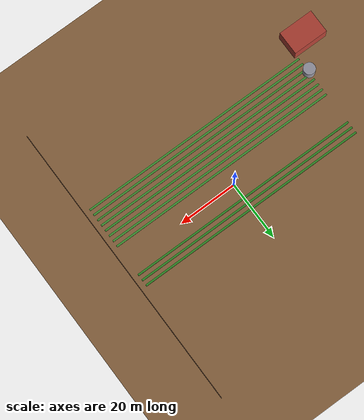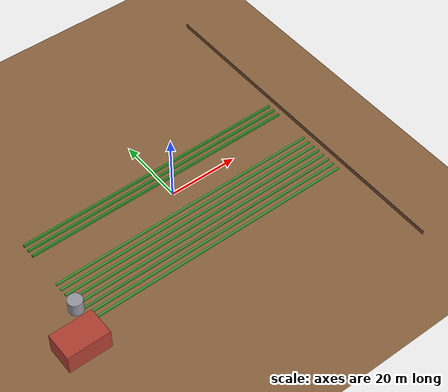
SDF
<?xml version="1.0"?>
<sdf version="1.9">
  <world name="agricultural">

    <!-- ── Physics ──────────────────────────────────────────────────── -->
    <physics name="1ms" type="ode">
      <max_step_size>0.001</max_step_size>
      <real_time_factor>1.0</real_time_factor>
      <real_time_update_rate>1000</real_time_update_rate>
    </physics>

    <!-- ── Plugins ──────────────────────────────────────────────────── -->
    <plugin filename="gz-sim-physics-system" name="gz::sim::systems::Physics"/>
    <plugin filename="gz-sim-user-commands-system" name="gz::sim::systems::UserCommands"/>
    <plugin filename="gz-sim-scene-broadcaster-system" name="gz::sim::systems::SceneBroadcaster"/>
    <plugin filename="gz-sim-sensors-system" name="gz::sim::systems::Sensors">
      <render_engine>ogre2</render_engine>
    </plugin>
    <plugin filename="gz-sim-imu-system" name="gz::sim::systems::Imu"/>
    <plugin filename="gz-sim-navsat-system" name="gz::sim::systems::NavSat"/>
    <plugin filename="gz-sim-air-pressure-system" name="gz::sim::systems::AirPressure"/>
    <plugin filename="gz-sim-magnetometer-system" name="gz::sim::systems::Magnetometer"/>

    <!-- ── GPS origin (agricultural area) ───────────────────────────── -->
    <spherical_coordinates>
      <surface_model>EARTH_WGS84</surface_model>
      <world_frame_orientation>ENU</world_frame_orientation>
      <latitude_deg>38.5382</latitude_deg>
      <longitude_deg>-121.7617</longitude_deg>
      <elevation>15.0</elevation>
      <heading_deg>0</heading_deg>
    </spherical_coordinates>

    <!-- ── Lighting ─────────────────────────────────────────────────── -->
    <light type="directional" name="sun">
      <cast_shadows>true</cast_shadows>
      <pose>0 0 100 0 0 0</pose>
      <diffuse>1.0 0.95 0.8 1</diffuse>
      <specular>0.3 0.3 0.3 1</specular>
      <direction>-0.3 0.2 -0.9</direction>
    </light>

    <scene>
      <ambient>0.5 0.5 0.4 1</ambient>
      <background>0.6 0.75 0.9 1</background>
      <shadows>true</shadows>
    </scene>

    <!-- ── Ground (dirt) ────────────────────────────────────────────── -->
    <model name="ground_dirt">
      <static>true</static>
      <link name="link">
        <collision name="collision">
          <geometry><plane><normal>0 0 1</normal><size>500 500</size></plane></geometry>
        </collision>
        <visual name="visual">
          <geometry><plane><normal>0 0 1</normal><size>500 500</size></plane></geometry>
          <material>
            <ambient>0.45 0.35 0.2 1</ambient>
            <diffuse>0.55 0.4 0.25 1</diffuse>
          </material>
        </visual>
      </link>
    </model>

    <!-- ── Crop rows (green strips) ─────────────────────────────────── -->
    <!-- Row 1 -->
    <model name="crop_row_01">
      <static>true</static>
      <link name="link">
        <visual name="visual">
          <geometry><box><size>80 0.6 0.4</size></box></geometry>
          <material>
            <ambient>0.2 0.5 0.15 1</ambient>
            <diffuse>0.25 0.6 0.2 1</diffuse>
          </material>
        </visual>
        <collision name="collision">
          <geometry><box><size>80 0.6 0.4</size></box></geometry>
        </collision>
      </link>
      <pose>0 -20 0.2 0 0 0</pose>
    </model>

    <model name="crop_row_02">
      <static>true</static>
      <link name="link">
        <visual name="visual">
          <geometry><box><size>80 0.6 0.45</size></box></geometry>
          <material>
            <ambient>0.2 0.5 0.15 1</ambient>
            <diffuse>0.25 0.6 0.2 1</diffuse>
          </material>
        </visual>
      </link>
      <pose>0 -18 0.225 0 0 0</pose>
    </model>

    <model name="crop_row_03">
      <static>true</static>
      <link name="link">
        <visual name="visual">
          <geometry><box><size>80 0.6 0.35</size></box></geometry>
          <material>
            <ambient>0.2 0.45 0.12 1</ambient>
            <diffuse>0.25 0.55 0.18 1</diffuse>
          </material>
        </visual>
      </link>
      <pose>0 -16 0.175 0 0 0</pose>
    </model>

    <model name="crop_row_04">
      <static>true</static>
      <link name="link">
        <visual name="visual">
          <geometry><box><size>80 0.6 0.4</size></box></geometry>
          <material>
            <ambient>0.2 0.5 0.15 1</ambient>
            <diffuse>0.25 0.6 0.2 1</diffuse>
          </material>
        </visual>
      </link>
      <pose>0 -14 0.2 0 0 0</pose>
    </model>

    <model name="crop_row_05">
      <static>true</static>
      <link name="link">
        <visual name="visual">
          <geometry><box><size>80 0.6 0.42</size></box></geometry>
          <material>
            <ambient>0.18 0.48 0.13 1</ambient>
            <diffuse>0.23 0.58 0.18 1</diffuse>
          </material>
        </visual>
      </link>
      <pose>0 -12 0.21 0 0 0</pose>
    </model>

    <model name="crop_row_06">
      <static>true</static>
      <link name="link">
        <visual name="visual">
          <geometry><box><size>80 0.6 0.38</size></box></geometry>
          <material>
            <ambient>0.2 0.5 0.15 1</ambient>
            <diffuse>0.25 0.6 0.2 1</diffuse>
          </material>
        </visual>
      </link>
      <pose>0 -10 0.19 0 0 0</pose>
    </model>

    <model name="crop_row_07">
      <static>true</static>
      <link name="link">
        <visual name="visual">
          <geometry><box><size>80 0.6 0.4</size></box></geometry>
          <material>
            <ambient>0.2 0.5 0.15 1</ambient>
            <diffuse>0.25 0.6 0.2 1</diffuse>
          </material>
        </visual>
      </link>
      <pose>0 -8 0.2 0 0 0</pose>
    </model>

    <model name="crop_row_08">
      <static>true</static>
      <link name="link">
        <visual name="visual">
          <geometry><box><size>80 0.6 0.43</size></box></geometry>
          <material>
            <ambient>0.2 0.5 0.15 1</ambient>
            <diffuse>0.25 0.6 0.2 1</diffuse>
          </material>
        </visual>
      </link>
      <pose>0 -6 0.215 0 0 0</pose>
    </model>

    <!-- Second field block (different crop height) -->
    <model name="crop_row_09">
      <static>true</static>
      <link name="link">
        <visual name="visual">
          <geometry><box><size>80 0.6 0.7</size></box></geometry>
          <material>
            <ambient>0.15 0.45 0.1 1</ambient>
            <diffuse>0.2 0.55 0.15 1</diffuse>
          </material>
        </visual>
      </link>
      <pose>0 5 0.35 0 0 0</pose>
    </model>

    <model name="crop_row_10">
      <static>true</static>
      <link name="link">
        <visual name="visual">
          <geometry><box><size>80 0.6 0.65</size></box></geometry>
          <material>
            <ambient>0.15 0.45 0.1 1</ambient>
            <diffuse>0.2 0.55 0.15 1</diffuse>
          </material>
        </visual>
      </link>
      <pose>0 7 0.325 0 0 0</pose>
    </model>

    <model name="crop_row_11">
      <static>true</static>
      <link name="link">
        <visual name="visual">
          <geometry><box><size>80 0.6 0.72</size></box></geometry>
          <material>
            <ambient>0.15 0.45 0.1 1</ambient>
            <diffuse>0.2 0.55 0.15 1</diffuse>
          </material>
        </visual>
      </link>
      <pose>0 9 0.36 0 0 0</pose>
    </model>

    <!-- ── Farm structures ──────────────────────────────────────────── -->
    <!-- Barn -->
    <model name="barn">
      <static>true</static>
      <link name="link">
        <collision name="collision">
          <geometry><box><size>12 8 6</size></box></geometry>
        </collision>
        <visual name="visual">
          <geometry><box><size>12 8 6</size></box></geometry>
          <material>
            <ambient>0.6 0.2 0.15 1</ambient>
            <diffuse>0.7 0.25 0.2 1</diffuse>
          </material>
        </visual>
      </link>
      <pose>-45 -25 3 0 0 0</pose>
    </model>

    <!-- Water tank -->
    <model name="water_tank">
      <static>true</static>
      <link name="link">
        <collision name="collision">
          <geometry><cylinder><radius>2</radius><length>4</length></cylinder></geometry>
        </collision>
        <visual name="visual">
          <geometry><cylinder><radius>2</radius><length>4</length></cylinder></geometry>
          <material>
            <ambient>0.5 0.5 0.55 1</ambient>
            <diffuse>0.6 0.6 0.65 1</diffuse>
          </material>
        </visual>
      </link>
      <pose>-40 -15 2 0 0 0</pose>
    </model>

    <!-- Fence posts -->
    <model name="fence_east">
      <static>true</static>
      <link name="link">
        <collision name="collision">
          <geometry><box><size>0.1 100 1.2</size></box></geometry>
        </collision>
        <visual name="visual">
          <geometry><box><size>0.1 100 1.2</size></box></geometry>
          <material>
            <ambient>0.35 0.25 0.15 1</ambient>
            <diffuse>0.45 0.3 0.2 1</diffuse>
          </material>
        </visual>
      </link>
      <pose>42 0 0.6 0 0 0</pose>
    </model>

  </world>
</sdf>
